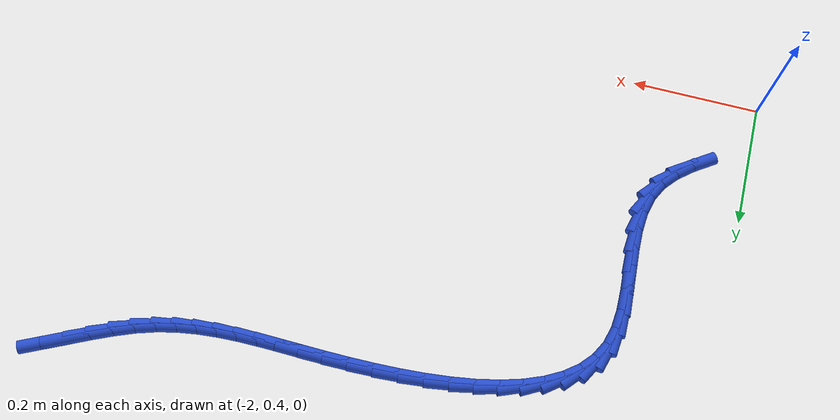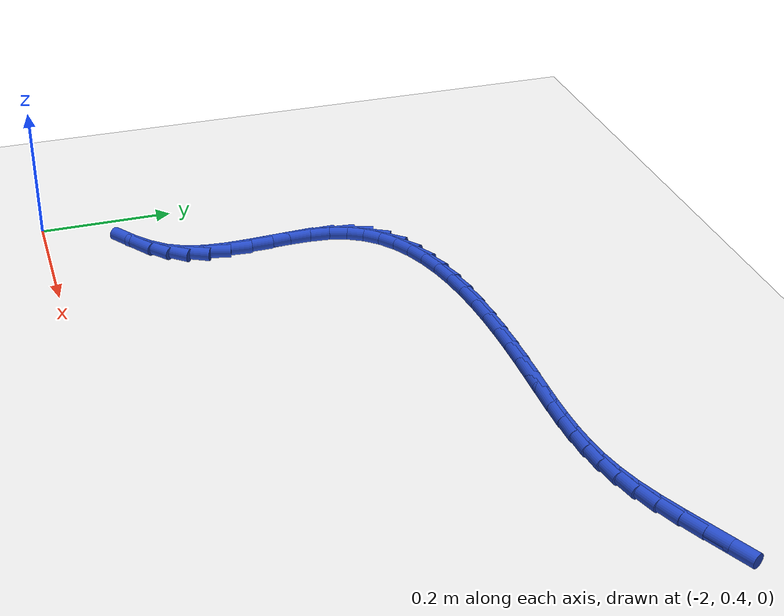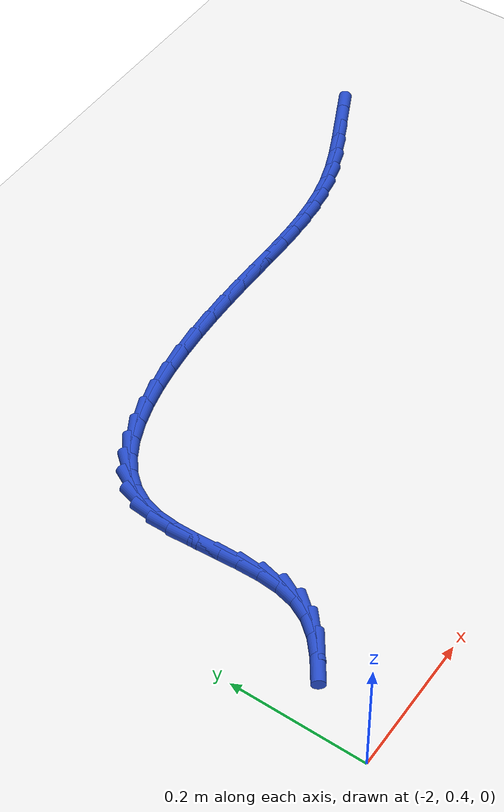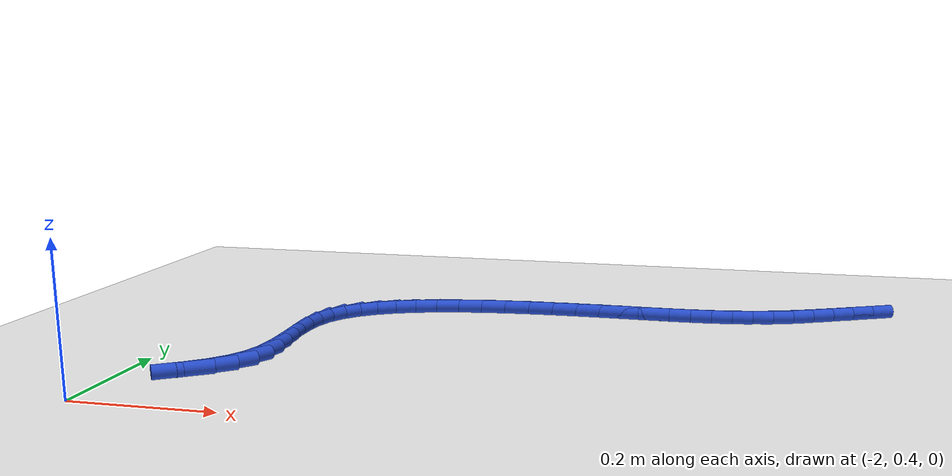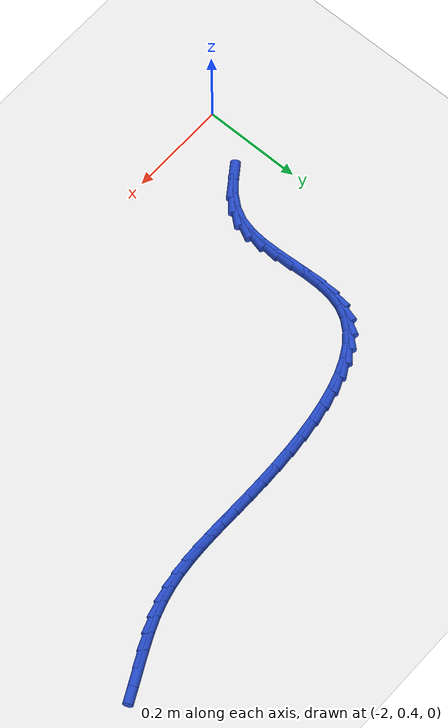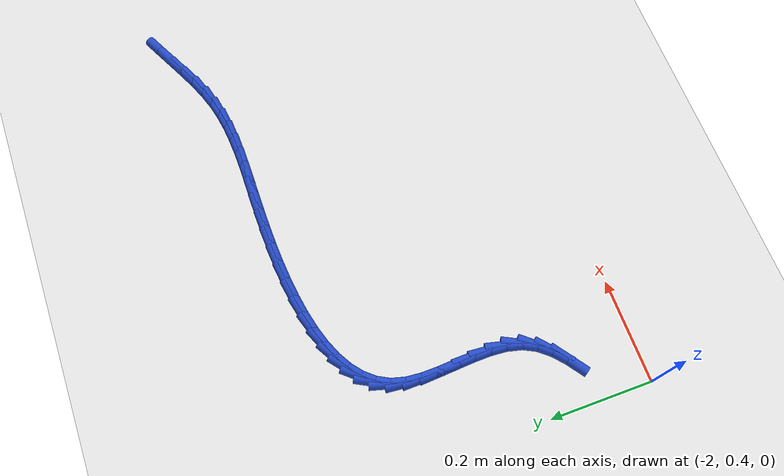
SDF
<sdf version="1.6">
 <world name="default">
  <model name="ground_plane">
   <static>1</static>
   <link name="link">
    <collision name="collision">
     <geometry><plane><normal>0 0 1</normal><size>100 100</size></plane></geometry>
     <surface><friction><ode><mu>100</mu><mu2>50</mu2></ode></friction></surface>
    </collision>
    <visual name="visual">
     <cast_shadows>0</cast_shadows>
     <geometry><plane><normal>0 0 1</normal><size>100 100</size></plane></geometry>
     <material>
      <script><uri>file://media/materials/scripts/gazebo.material</uri><name>Gazebo/WhiteGlow</name></script>
     </material>
    </visual>
   </link>
  </model>
  <model name="line">
   <link name="link_53">
    <pose>-1.0445961019341643 1.0559580932170725 0.01 0 1.57 0.46493946698764704</pose>
    <collision name="collision">
     <geometry><cylinder><radius>0.01</radius><length>0.08</length></cylinder></geometry>
    </collision>
    <visual name="visual">
     <material>
      <script><name>Gazebo/Blue</name><uri>file://media/materials/scripts/gazebo.material</uri></script>
     </material>
     <geometry><cylinder><radius>0.01</radius><length>0.08</length></cylinder></geometry>
    </visual>
   </link>
   <link name="link_54">
    <pose>-1.0744824984612946 1.0409666025080873 0.01 0 1.57 0.4648331794176635</pose>
    <collision name="collision">
     <geometry><cylinder><radius>0.01</radius><length>0.08</length></cylinder></geometry>
    </collision>
    <visual name="visual">
     <material>
      <script><name>Gazebo/Blue</name><uri>file://media/materials/scripts/gazebo.material</uri></script>
     </material>
     <geometry><cylinder><radius>0.01</radius><length>0.08</length></cylinder></geometry>
    </visual>
   </link>
   <link name="link_55">
    <pose>-1.1044202393606253 1.0259533390971847 0.01 0 1.57 0.4422019857636951</pose>
    <collision name="collision">
     <geometry><cylinder><radius>0.01</radius><length>0.08</length></cylinder></geometry>
    </collision>
    <visual name="visual">
     <material>
      <script><name>Gazebo/Blue</name><uri>file://media/materials/scripts/gazebo.material</uri></script>
     </material>
     <geometry><cylinder><radius>0.01</radius><length>0.08</length></cylinder></geometry>
    </visual>
   </link>
   <link name="link_56">
    <pose>-1.1343430404311377 1.0117856903977593 0.01 0 1.57 0.39538077260178434</pose>
    <collision name="collision">
     <geometry><cylinder><radius>0.01</radius><length>0.08</length></cylinder></geometry>
    </collision>
    <visual name="visual">
     <material>
      <script><name>Gazebo/Blue</name><uri>file://media/materials/scripts/gazebo.material</uri></script>
     </material>
     <geometry><cylinder><radius>0.01</radius><length>0.08</length></cylinder></geometry>
    </visual>
   </link>
   <link name="link_57">
    <pose>-1.1641846174718147 0.9993310438232068 0.01 0 1.57 0.322494322950489</pose>
    <collision name="collision">
     <geometry><cylinder><radius>0.01</radius><length>0.08</length></cylinder></geometry>
    </collision>
    <visual name="visual">
     <material>
      <script><name>Gazebo/Blue</name><uri>file://media/materials/scripts/gazebo.material</uri></script>
     </material>
     <geometry><cylinder><radius>0.01</radius><length>0.08</length></cylinder></geometry>
    </visual>
   </link>
   <link name="link_58">
    <pose>-1.1938896981670368 0.9894047956049336 0.01 0 1.57 0.24072029225264766</pose>
    <collision name="collision">
     <geometry><cylinder><radius>0.01</radius><length>0.08</length></cylinder></geometry>
    </collision>
    <visual name="visual">
     <material>
      <script><name>Gazebo/Blue</name><uri>file://media/materials/scripts/gazebo.material</uri></script>
     </material>
     <geometry><cylinder><radius>0.01</radius><length>0.08</length></cylinder></geometry>
    </visual>
   </link>
   <link name="link_59">
    <pose>-1.2235510214620184 0.9821235260932467 0.01 0 1.57 0.16679579527315663</pose>
    <collision name="collision">
     <geometry><cylinder><radius>0.01</radius><length>0.08</length></cylinder></geometry>
    </collision>
    <visual name="visual">
     <material>
      <script><name>Gazebo/Blue</name><uri>file://media/materials/scripts/gazebo.material</uri></script>
     </material>
     <geometry><cylinder><radius>0.01</radius><length>0.08</length></cylinder></geometry>
    </visual>
   </link>
   <link name="link_60">
    <pose>-1.2533672598767625 0.9771036640689655 0.01 0 1.57 0.10411874694446065</pose>
    <collision name="collision">
     <geometry><cylinder><radius>0.01</radius><length>0.08</length></cylinder></geometry>
    </collision>
    <visual name="visual">
     <material>
      <script><name>Gazebo/Blue</name><uri>file://media/materials/scripts/gazebo.material</uri></script>
     </material>
     <geometry><cylinder><radius>0.01</radius><length>0.08</length></cylinder></geometry>
    </visual>
   </link>
   <link name="link_61">
    <pose>-1.2835393860329154 0.9739507786827291 0.01 0 1.57 0.05462815229645936</pose>
    <collision name="collision">
     <geometry><cylinder><radius>0.01</radius><length>0.08</length></cylinder></geometry>
    </collision>
    <visual name="visual">
     <material>
      <script><name>Gazebo/Blue</name><uri>file://media/materials/scripts/gazebo.material</uri></script>
     </material>
     <geometry><cylinder><radius>0.01</radius><length>0.08</length></cylinder></geometry>
    </visual>
   </link>
   <link name="link_62">
    <pose>-1.3142683725521218 0.9722704390851763 0.01 0 1.57 0.019123914383947265</pose>
    <collision name="collision">
     <geometry><cylinder><radius>0.01</radius><length>0.08</length></cylinder></geometry>
    </collision>
    <visual name="visual">
     <material>
      <script><name>Gazebo/Blue</name><uri>file://media/materials/scripts/gazebo.material</uri></script>
     </material>
     <geometry><cylinder><radius>0.01</radius><length>0.08</length></cylinder></geometry>
    </visual>
   </link>
   <link name="link_63">
    <pose>-1.345755192056029 0.9716682144269467 0.01 0 1.57 -0.0025106392711121213</pose>
    <collision name="collision">
     <geometry><cylinder><radius>0.01</radius><length>0.08</length></cylinder></geometry>
    </collision>
    <visual name="visual">
     <material>
      <script><name>Gazebo/Blue</name><uri>file://media/materials/scripts/gazebo.material</uri></script>
     </material>
     <geometry><cylinder><radius>0.01</radius><length>0.08</length></cylinder></geometry>
    </visual>
   </link>
   <link name="link_64">
    <pose>-1.3782008171662805 0.971749673858679 0.01 0 1.57 -0.011030893820782851</pose>
    <collision name="collision">
     <geometry><cylinder><radius>0.01</radius><length>0.08</length></cylinder></geometry>
    </collision>
    <visual name="visual">
     <material>
      <script><name>Gazebo/Blue</name><uri>file://media/materials/scripts/gazebo.material</uri></script>
     </material>
     <geometry><cylinder><radius>0.01</radius><length>0.08</length></cylinder></geometry>
    </visual>
   </link>
   <link name="link_65">
    <pose>-1.4118062205045232 0.9721203865310122 0.01 0 1.57 -0.007594201885368539</pose>
    <collision name="collision">
     <geometry><cylinder><radius>0.01</radius><length>0.08</length></cylinder></geometry>
    </collision>
    <visual name="visual">
     <material>
      <script><name>Gazebo/Blue</name><uri>file://media/materials/scripts/gazebo.material</uri></script>
     </material>
     <geometry><cylinder><radius>0.01</radius><length>0.08</length></cylinder></geometry>
    </visual>
   </link>
   <link name="link_66">
    <pose>-1.4467723311654537 0.9723859313393618 0.01 0 1.57 0.005509216090601147</pose>
    <collision name="collision">
     <geometry><cylinder><radius>0.01</radius><length>0.08</length></cylinder></geometry>
    </collision>
    <visual name="visual">
     <material>
      <script><name>Gazebo/Blue</name><uri>file://media/materials/scripts/gazebo.material</uri></script>
     </material>
     <geometry><cylinder><radius>0.01</radius><length>0.08</length></cylinder></geometry>
    </visual>
   </link>
   <link name="link_67">
    <pose>-1.4831498612118819 0.9721855176378733 0.01 0 1.57 0.02457863378522473</pose>
    <collision name="collision">
     <geometry><cylinder><radius>0.01</radius><length>0.08</length></cylinder></geometry>
    </collision>
    <visual name="visual">
     <material>
      <script><name>Gazebo/Blue</name><uri>file://media/materials/scripts/gazebo.material</uri></script>
     </material>
     <geometry><cylinder><radius>0.01</radius><length>0.08</length></cylinder></geometry>
    </visual>
   </link>
   <link name="link_68">
    <pose>-1.5205031679074472 0.9712672394710468 0.01 0 1.57 0.04933268261214507</pose>
    <collision name="collision">
     <geometry><cylinder><radius>0.01</radius><length>0.08</length></cylinder></geometry>
    </collision>
    <visual name="visual">
     <material>
      <script><name>Gazebo/Blue</name><uri>file://media/materials/scripts/gazebo.material</uri></script>
     </material>
     <geometry><cylinder><radius>0.01</radius><length>0.08</length></cylinder></geometry>
    </visual>
   </link>
   <link name="link_69">
    <pose>-1.5582983570113862 0.9694011873449173 0.01 0 1.57 0.08055419651748409</pose>
    <collision name="collision">
     <geometry><cylinder><radius>0.01</radius><length>0.08</length></cylinder></geometry>
    </collision>
    <visual name="visual">
     <material>
      <script><name>Gazebo/Blue</name><uri>file://media/materials/scripts/gazebo.material</uri></script>
     </material>
     <geometry><cylinder><radius>0.01</radius><length>0.08</length></cylinder></geometry>
    </visual>
   </link>
   <link name="link_70">
    <pose>-1.5960015342829392 0.9663574517655208 0.01 0 1.57 0.11948358979428807</pose>
    <collision name="collision">
     <geometry><cylinder><radius>0.01</radius><length>0.08</length></cylinder></geometry>
    </collision>
    <visual name="visual">
     <material>
      <script><name>Gazebo/Blue</name><uri>file://media/materials/scripts/gazebo.material</uri></script>
     </material>
     <geometry><cylinder><radius>0.01</radius><length>0.08</length></cylinder></geometry>
    </visual>
   </link>
   <link name="link_71">
    <pose>-1.6330788054813445 0.9619061232388935 0.01 0 1.57 0.16792634420255212</pose>
    <collision name="collision">
     <geometry><cylinder><radius>0.01</radius><length>0.08</length></cylinder></geometry>
    </collision>
    <visual name="visual">
     <material>
      <script><name>Gazebo/Blue</name><uri>file://media/materials/scripts/gazebo.material</uri></script>
     </material>
     <geometry><cylinder><radius>0.01</radius><length>0.08</length></cylinder></geometry>
    </visual>
   </link>
   <link name="link_72">
    <pose>-1.6689962763658415 0.9558172922710709 0.01 0 1.57 0.22841971843179115</pose>
    <collision name="collision">
     <geometry><cylinder><radius>0.01</radius><length>0.08</length></cylinder></geometry>
    </collision>
    <visual name="visual">
     <material>
      <script><name>Gazebo/Blue</name><uri>file://media/materials/scripts/gazebo.material</uri></script>
     </material>
     <geometry><cylinder><radius>0.01</radius><length>0.08</length></cylinder></geometry>
    </visual>
   </link>
   <link name="link_73">
    <pose>-1.703220052695668 0.947861049368089 0.01 0 1.57 0.30444317556364126</pose>
    <collision name="collision">
     <geometry><cylinder><radius>0.01</radius><length>0.08</length></cylinder></geometry>
    </collision>
    <visual name="visual">
     <material>
      <script><name>Gazebo/Blue</name><uri>file://media/materials/scripts/gazebo.material</uri></script>
     </material>
     <geometry><cylinder><radius>0.01</radius><length>0.08</length></cylinder></geometry>
    </visual>
   </link>
   <link name="link_74">
    <pose>-1.7352162402300644 0.937807485035983 0.01 0 1.57 0.40059648691320915</pose>
    <collision name="collision">
     <geometry><cylinder><radius>0.01</radius><length>0.08</length></cylinder></geometry>
    </collision>
    <visual name="visual">
     <material>
      <script><name>Gazebo/Blue</name><uri>file://media/materials/scripts/gazebo.material</uri></script>
     </material>
     <geometry><cylinder><radius>0.01</radius><length>0.08</length></cylinder></geometry>
    </visual>
   </link>
   <link name="link_75">
    <pose>-1.7644509447282681 0.9254266897807893 0.01 0 1.57 0.5224952533294218</pose>
    <collision name="collision">
     <geometry><cylinder><radius>0.01</radius><length>0.08</length></cylinder></geometry>
    </collision>
    <visual name="visual">
     <material>
      <script><name>Gazebo/Blue</name><uri>file://media/materials/scripts/gazebo.material</uri></script>
     </material>
     <geometry><cylinder><radius>0.01</radius><length>0.08</length></cylinder></geometry>
    </visual>
   </link>
   <link name="link_76">
    <pose>-1.7903902719495188 0.9104887541085434 0.01 0 1.57 0.6757588800221381</pose>
    <collision name="collision">
     <geometry><cylinder><radius>0.01</radius><length>0.08</length></cylinder></geometry>
    </collision>
    <visual name="visual">
     <material>
      <script><name>Gazebo/Blue</name><uri>file://media/materials/scripts/gazebo.material</uri></script>
     </material>
     <geometry><cylinder><radius>0.01</radius><length>0.08</length></cylinder></geometry>
    </visual>
   </link>
   <link name="link_77">
    <pose>-1.8125003276530554 0.8927637685252816 0.01 0 1.57 0.8630578675037818</pose>
    <collision name="collision">
     <geometry><cylinder><radius>0.01</radius><length>0.08</length></cylinder></geometry>
    </collision>
    <visual name="visual">
     <material>
      <script><name>Gazebo/Blue</name><uri>file://media/materials/scripts/gazebo.material</uri></script>
     </material>
     <geometry><cylinder><radius>0.01</radius><length>0.08</length></cylinder></geometry>
    </visual>
   </link>
   <link name="link_78">
    <pose>-1.8302472175981164 0.8720218235370389 0.01 0 1.57 1.0790299184605452</pose>
    <collision name="collision">
     <geometry><cylinder><radius>0.01</radius><length>0.08</length></cylinder></geometry>
    </collision>
    <visual name="visual">
     <material>
      <script><name>Gazebo/Blue</name><uri>file://media/materials/scripts/gazebo.material</uri></script>
     </material>
     <geometry><cylinder><radius>0.01</radius><length>0.08</length></cylinder></geometry>
    </visual>
   </link>
   <link name="link_79">
    <pose>-1.843097047543941 0.8480330096498516 0.01 0 1.57 1.303586627870128</pose>
    <collision name="collision">
     <geometry><cylinder><radius>0.01</radius><length>0.08</length></cylinder></geometry>
    </collision>
    <visual name="visual">
     <material>
      <script><name>Gazebo/Blue</name><uri>file://media/materials/scripts/gazebo.material</uri></script>
     </material>
     <geometry><cylinder><radius>0.01</radius><length>0.08</length></cylinder></geometry>
    </visual>
   </link>
   <link name="link_80">
    <pose>-1.8506027339382198 0.8206156203291701 0.01 0 1.57 1.4768822661330032</pose>
    <collision name="collision">
     <geometry><cylinder><radius>0.01</radius><length>0.08</length></cylinder></geometry>
    </collision>
    <visual name="visual">
     <material>
      <script><name>Gazebo/Blue</name><uri>file://media/materials/scripts/gazebo.material</uri></script>
     </material>
     <geometry><cylinder><radius>0.01</radius><length>0.08</length></cylinder></geometry>
    </visual>
   </link>
   <link name="link_81">
    <pose>-1.8534652225369452 0.7902254098317569 0.01 0 1.57 -1.5625593841259713</pose>
    <collision name="collision">
     <geometry><cylinder><radius>0.01</radius><length>0.08</length></cylinder></geometry>
    </collision>
    <visual name="visual">
     <material>
      <script><name>Gazebo/Blue</name><uri>file://media/materials/scripts/gazebo.material</uri></script>
     </material>
     <geometry><cylinder><radius>0.01</radius><length>0.08</length></cylinder></geometry>
    </visual>
   </link>
   <link name="link_82">
    <pose>-1.8531978768787691 0.7577692397849489 0.01 0 1.57 -1.5153076532462615</pose>
    <collision name="collision">
     <geometry><cylinder><radius>0.01</radius><length>0.08</length></cylinder></geometry>
    </collision>
    <visual name="visual">
     <material>
      <script><name>Gazebo/Blue</name><uri>file://media/materials/scripts/gazebo.material</uri></script>
     </material>
     <geometry><cylinder><radius>0.01</radius><length>0.08</length></cylinder></geometry>
    </visual>
   </link>
   <link name="link_83">
    <pose>-1.8513312228375425 0.7241635014645831 0.01 0 1.57 -1.5136629885065895</pose>
    <collision name="collision">
     <geometry><cylinder><radius>0.01</radius><length>0.08</length></cylinder></geometry>
    </collision>
    <visual name="visual">
     <material>
      <script><name>Gazebo/Blue</name><uri>file://media/materials/scripts/gazebo.material</uri></script>
     </material>
     <geometry><cylinder><radius>0.01</radius><length>0.08</length></cylinder></geometry>
    </visual>
   </link>
   <link name="link_84">
    <pose>-1.8493957862871184 0.6903245861464993 0.01 0 1.57 -1.5565103685630546</pose>
    <collision name="collision">
     <geometry><cylinder><radius>0.01</radius><length>0.08</length></cylinder></geometry>
    </collision>
    <visual name="visual">
     <material>
      <script><name>Gazebo/Blue</name><uri>file://media/materials/scripts/gazebo.material</uri></script>
     </material>
     <geometry><cylinder><radius>0.01</radius><length>0.08</length></cylinder></geometry>
    </visual>
   </link>
   <link name="link_85">
    <pose>-1.8489220931013488 0.6571688851065346 0.01 0 1.57 1.4911524883200606</pose>
    <collision name="collision">
     <geometry><cylinder><radius>0.01</radius><length>0.08</length></cylinder></geometry>
    </collision>
    <visual name="visual">
     <material>
      <script><name>Gazebo/Blue</name><uri>file://media/materials/scripts/gazebo.material</uri></script>
     </material>
     <geometry><cylinder><radius>0.01</radius><length>0.08</length></cylinder></geometry>
    </visual>
   </link>
   <link name="link_86">
    <pose>-1.8514406691540852 0.6256127896205278 0.01 0 1.57 1.3329165822445894</pose>
    <collision name="collision">
     <geometry><cylinder><radius>0.01</radius><length>0.08</length></cylinder></geometry>
    </collision>
    <visual name="visual">
     <material>
      <script><name>Gazebo/Blue</name><uri>file://media/materials/scripts/gazebo.material</uri></script>
     </material>
     <geometry><cylinder><radius>0.01</radius><length>0.08</length></cylinder></geometry>
    </visual>
   </link>
   <link name="link_87">
    <pose>-1.8584820403191795 0.5965726909643165 0.01 0 1.57 1.1041570208388092</pose>
    <collision name="collision">
     <geometry><cylinder><radius>0.01</radius><length>0.08</length></cylinder></geometry>
    </collision>
    <visual name="visual">
     <material>
      <script><name>Gazebo/Blue</name><uri>file://media/materials/scripts/gazebo.material</uri></script>
     </material>
     <geometry><cylinder><radius>0.01</radius><length>0.08</length></cylinder></geometry>
    </visual>
   </link>
   <link name="link_88">
    <pose>-1.8714278116904697 0.570873646129207 0.01 0 1.57 0.8804212497554387</pose>
    <collision name="collision">
     <geometry><cylinder><radius>0.01</radius><length>0.08</length></cylinder></geometry>
    </collision>
    <visual name="visual">
     <material>
      <script><name>Gazebo/Blue</name><uri>file://media/materials/scripts/gazebo.material</uri></script>
     </material>
     <geometry><cylinder><radius>0.01</radius><length>0.08</length></cylinder></geometry>
    </visual>
   </link>
   <link name="link_89">
    <pose>-1.8900358448263939 0.548344857437634 0.01 0 1.57 0.7186105907742586</pose>
    <collision name="collision">
     <geometry><cylinder><radius>0.01</radius><length>0.08</length></cylinder></geometry>
    </collision>
    <visual name="visual">
     <material>
      <script><name>Gazebo/Blue</name><uri>file://media/materials/scripts/gazebo.material</uri></script>
     </material>
     <geometry><cylinder><radius>0.01</radius><length>0.08</length></cylinder></geometry>
    </visual>
   </link>
   <link name="link_90">
    <pose>-1.9130652919679616 0.5282030109402664 0.01 0 1.57 0.616095154631776</pose>
    <collision name="collision">
     <geometry><cylinder><radius>0.01</radius><length>0.08</length></cylinder></geometry>
    </collision>
    <visual name="visual">
     <material>
      <script><name>Gazebo/Blue</name><uri>file://media/materials/scripts/gazebo.material</uri></script>
     </material>
     <geometry><cylinder><radius>0.01</radius><length>0.08</length></cylinder></geometry>
    </visual>
   </link>
  </model>
 </world>
</sdf>
